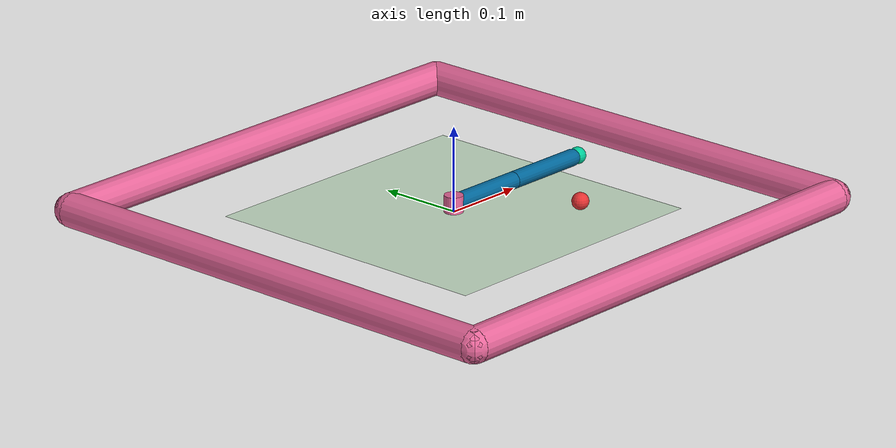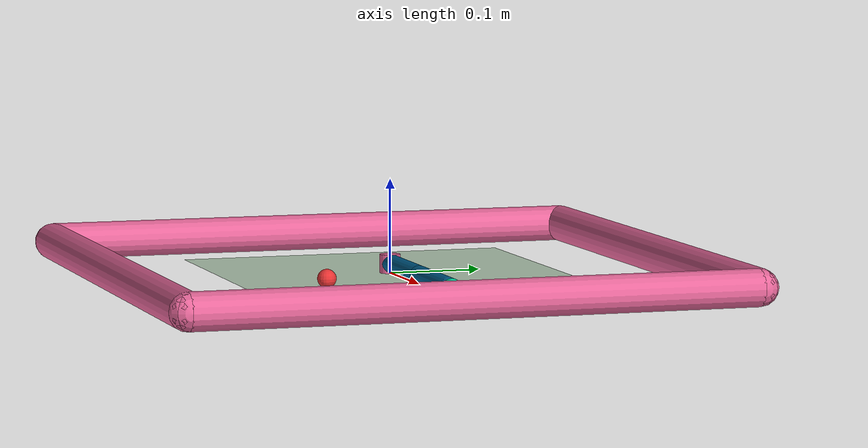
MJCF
<mujoco model="reacher">
    <compiler angle="radian" inertiafromgeom="true"/>
    <default>
        <joint armature="1" damping="1" limited="true"/>
        <geom contype="0" friction="1 0.1 0.1" rgba="0.7 0.7 0 1"/>
    </default>
    <option gravity="0 0 -9.81" integrator="RK4" timestep="0.01"/>
    <asset>
        <texture builtin="gradient" height="100" rgb1="1 1 1" rgb2="0 0 0" type="skybox" width="100"/>
        <texture builtin="flat" height="1278" mark="cross" markrgb="1 1 1" name="texgeom" random="0.01" rgb1="0.8 0.6 0.4" rgb2="0.8 0.6 0.4" type="cube" width="127"/>
        <texture builtin="checker" height="100" name="texplane" rgb1="0 0 0" rgb2="0.8 0.8 0.8" type="2d" width="100"/>
        <material name="MatPlane" reflectance="0.1" shininess="0" specular="1" texrepeat="4 4" texture="texplane"/>
    </asset>
    <worldbody>
        <!-- Arena -->
        <geom conaffinity="1" condim="3" material="MatPlane" name="floor" pos="0 0 0" rgba="0.8 0.9 0.8 1" size=".18 .18 .18" type="plane"/>
        <geom conaffinity="0" fromto="-.3 -.3 .01 .3 -.3 .01" name="sideS" rgba="0.9 0.4 0.6 1" size=".02" type="capsule"/>
        <geom conaffinity="0" fromto=" .3 -.3 .01 .3  .3 .01" name="sideE" rgba="0.9 0.4 0.6 1" size=".02" type="capsule"/>
        <geom conaffinity="0" fromto="-.3  .3 .01 .3  .3 .01" name="sideN" rgba="0.9 0.4 0.6 1" size=".02" type="capsule"/>
        <geom conaffinity="0" fromto="-.3 -.3 .01 -.3 .3 .01" name="sideW" rgba="0.9 0.4 0.6 1" size=".02" type="capsule"/>
        <!-- Arm -->
        <geom conaffinity="0" contype="0" fromto="0 0 0 0 0 0.02" name="root" rgba="0.9 0.4 0.6 1" size=".011" type="cylinder"/>
        <body name="body0" pos="0 0 .01">
            <geom fromto="0 0 0 0.1 0 0" name="link0" rgba="0.0 0.4 0.6 1" size=".01" type="capsule"/>
            <joint axis="0 0 1" limited="false" name="joint0" pos="0 0 0" type="hinge" frictionloss="1"/>
            <body name="body1" pos="0.1 0 0">
                <joint axis="0 0 1" limited="true" name="joint1" pos="0 0 0" range="-3.0 3.0" type="hinge"/>
                <geom fromto="0 0 0 0.1 0 0" name="link1" rgba="0.0 0.4 0.6 1" size=".01" type="capsule"/>
                <body name="fingertip" pos="0.11 0 0">
                    <geom contype="0" name="fingertip" pos="0 0 0" rgba="0.0 0.8 0.6 1" size=".01" type="sphere"/>
                </body>
            </body>
        </body>
        <!-- Target -->
        <body name="target" pos=".1 -.1 .01">
            <joint armature="0" axis="1 0 0" damping="0" limited="true" name="target_x" pos="0 0 0" range="-.27 .27" ref=".1" stiffness="0" type="slide"/>
            <joint armature="0" axis="0 1 0" damping="0" limited="true" name="target_y" pos="0 0 0" range="-.27 .27" ref="-.1" stiffness="0" type="slide"/>
            <geom conaffinity="0" contype="0" name="target" pos="0 0 0" rgba="0.9 0.2 0.2 1" size=".01" type="sphere"/>
        </body>
    </worldbody>
    <actuator>
        <motor ctrllimited="true" ctrlrange="-1.0 1.0" gear="200.0" joint="joint0"/>
        <motor ctrllimited="true" ctrlrange="-1.0 1.0" gear="200.0" joint="joint1"/>
    </actuator>
</mujoco>
